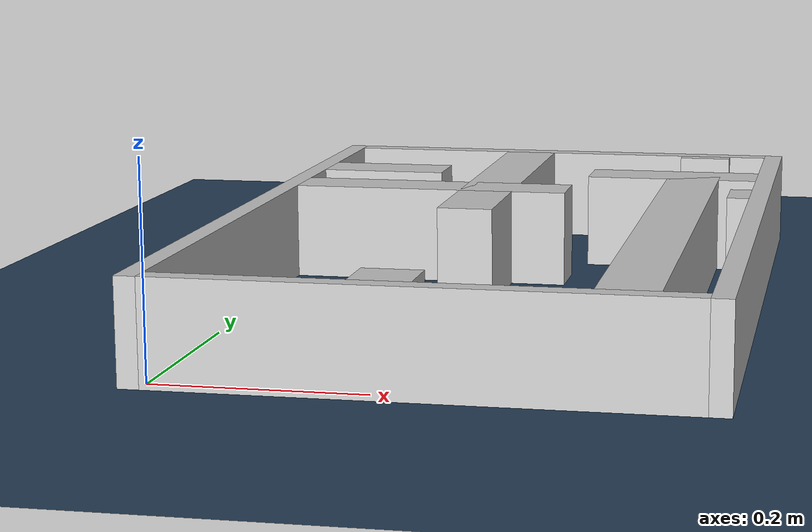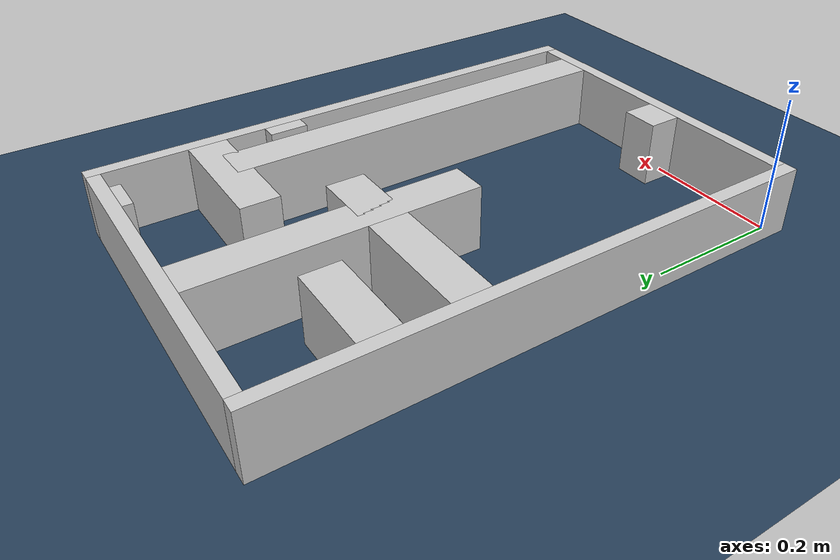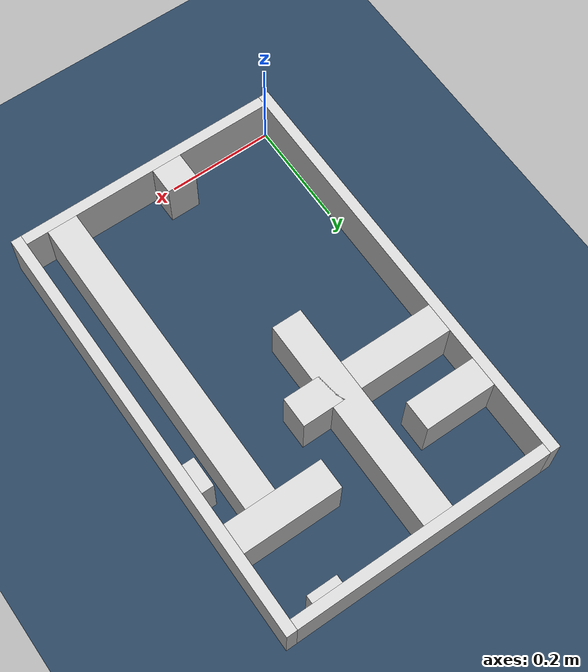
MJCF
<?xml version="1.0" ?>
<mujoco model="generated_real_template">
  <compiler angle="degree"/>
  <option timestep="0.002" integrator="implicitfast" iterations="100" cone="elliptic"/>
  <default>
    <geom density="1"/>
  </default>
  <asset>
    <texture builtin="gradient" height="3072" rgb1="0.3 0.5 0.7" rgb2="0 0 0" type="skybox" width="512"/>
    <texture builtin="checker" height="300" mark="edge" markrgb="0.8 0.8 0.8" name="groundplane" rgb1="0.2 0.3 0.4" rgb2="0.1 0.2 0.3" type="2d" width="300"/>
    <material name="groundplane" reflectance="0.2" texrepeat="5 5" texture="groundplane" texuniform="true"/>
  </asset>
  <worldbody>
    <light dir="0 0 -1" directional="true" pos="0 0 1.5"/>
    <geom name="floor" type="plane" condim="4" friction="0.5 0.005 0.001" material="groundplane" size="0 0 0.05"/>
    <body name="walls">
      <geom name="wall_boundary_left" type="box" condim="4" friction="1.0 0.005 0.0001" rgba="0.8 0.8 0.8 1" pos="-0.010000 0.387500 0.050000" euler="0 0 0.000000" size="0.010000 0.407500 0.050000"/>
      <geom name="wall_boundary_right" type="box" condim="4" friction="1.0 0.005 0.0001" rgba="0.8 0.8 0.8 1" pos="0.500000 0.387500 0.050000" euler="0 0 0.000000" size="0.010000 0.407500 0.050000"/>
      <geom name="wall_boundary_bottom" type="box" condim="4" friction="1.0 0.005 0.0001" rgba="0.8 0.8 0.8 1" pos="0.245000 -0.010000 0.050000" euler="0 0 0.000000" size="0.245000 0.010000 0.050000"/>
      <geom name="wall_boundary_top" type="box" condim="4" friction="1.0 0.005 0.0001" rgba="0.8 0.8 0.8 1" pos="0.245000 0.785000 0.050000" euler="0 0 0.000000" size="0.245000 0.010000 0.050000"/>
      <geom name="wall_inner_1_1" type="box" condim="4" friction="1.0 0.005 0.0001" rgba="0.8 0.8 0.8 1" pos="0.147268 0.506949 0.050000" euler="0 0 0.000000" size="0.147268 0.028500 0.050000"/>
      <geom name="wall_inner_1_2" type="box" condim="4" friction="1.0 0.005 0.0001" rgba="0.8 0.8 0.8 1" pos="0.478418 0.506949 0.050000" euler="0 0 0.000000" size="0.011582 0.028500 0.050000"/>
      <geom name="wall_inner_2_1" type="box" condim="4" friction="1.0 0.005 0.0001" rgba="0.8 0.8 0.8 1" pos="0.420536 0.309098 0.050000" euler="0 0 90.000000" size="0.309098 0.028500 0.050000"/>
      <geom name="wall_inner_2_2" type="box" condim="4" friction="1.0 0.005 0.0001" rgba="0.8 0.8 0.8 1" pos="0.420536 0.767488 0.050000" euler="0 0 90.000000" size="0.007512 0.028500 0.050000"/>
      <geom name="wall_inner_3_1" type="box" condim="4" friction="1.0 0.005 0.0001" rgba="0.8 0.8 0.8 1" pos="0.208825 0.025360 0.050000" euler="0 0 90.000000" size="0.025360 0.028500 0.050000"/>
      <geom name="wall_inner_3_2" type="box" condim="4" friction="1.0 0.005 0.0001" rgba="0.8 0.8 0.8 1" pos="0.208825 0.569696 0.050000" euler="0 0 90.000000" size="0.205304 0.028500 0.050000"/>
      <geom name="wall_inner_4_1" type="box" condim="4" friction="1.0 0.005 0.0001" rgba="0.8 0.8 0.8 1" pos="0.067854 0.624079 0.050000" euler="0 0 0.000000" size="0.067854 0.028500 0.050000"/>
      <geom name="wall_inner_4_2" type="box" condim="4" friction="1.0 0.005 0.0001" rgba="0.8 0.8 0.8 1" pos="0.396907 0.624079 0.050000" euler="0 0 0.000000" size="0.093093 0.028500 0.050000"/>
    </body>
  </worldbody>
</mujoco>
